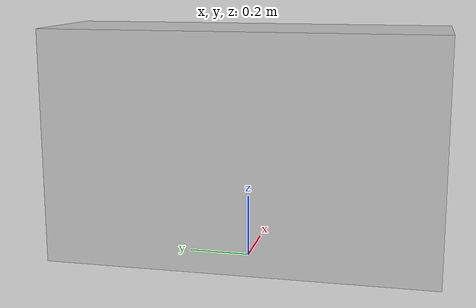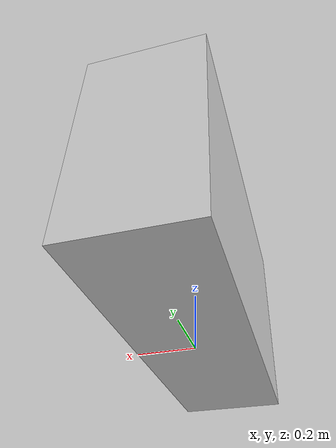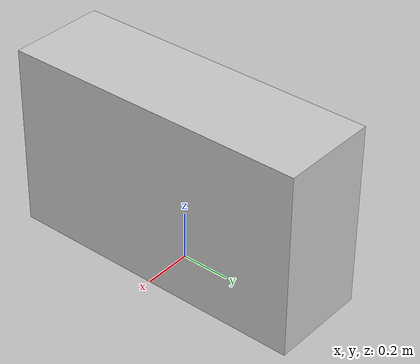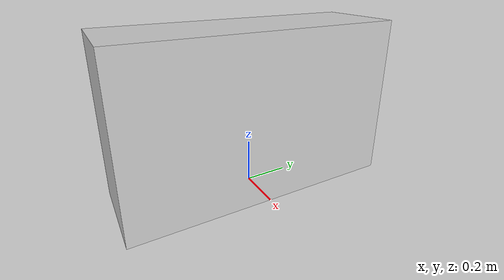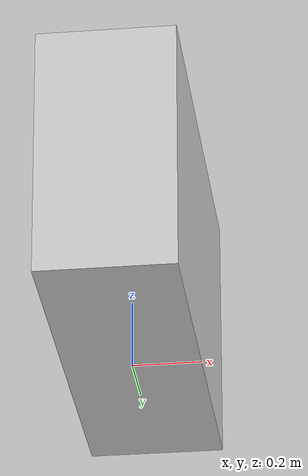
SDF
<?xml version="1.0" ?>
<sdf version="1.6">
  <model name="ddw/couch">
    <link name="1">
      <collision name="1">
        <geometry>
          <box>
            <size>0.4 1.25 0.75</size>
          </box>
        </geometry>
        <pose>0.0 0.0 0.375 0 0 0</pose>
        <name>1</name>
      </collision>
      <visual name="1">
        <geometry>
          <box>
            <size>0.4 1.25 0.75</size>
          </box>
        </geometry>
        <material>
          <ambient>0.8 0.8 0.8 1</ambient>
        </material>
        <pose>0.0 0.0 0.375 0 0 0</pose>
        <name>1</name>
      </visual>
      <pose>0 0 0 0 0 0</pose>
      <name>1</name>
    </link>
    <link name="in_front_of">
      <virtual_volume name="in_front_of">
        <geometry>
          <box>
            <size>0.9 0.6 0.01</size>
          </box>
        </geometry>
        <pose>0.45 0.0 0.005 0 0 0</pose>
        <name>in_front_of</name>
      </virtual_volume>
      <name>in_front_of</name>
    </link>
    <link name="on_top_of">
      <virtual_volume name="on_top_of">
        <geometry>
          <box>
            <size>0.4 1.25 0.43</size>
          </box>
        </geometry>
        <pose>0.0 0.0 0.985 0 0 0</pose>
        <name>on_top_of</name>
      </virtual_volume>
      <name>on_top_of</name>
    </link>
    <static>true</static>
    <name>ddw/couch</name>
  </model>
</sdf>
